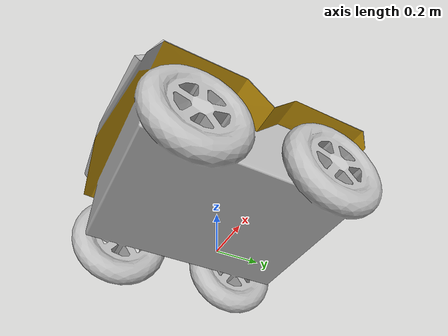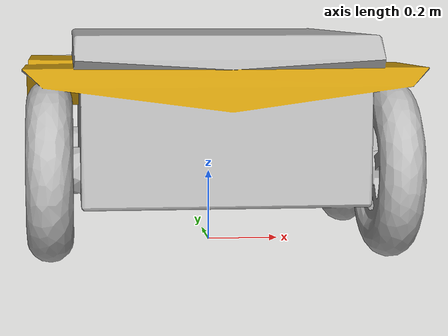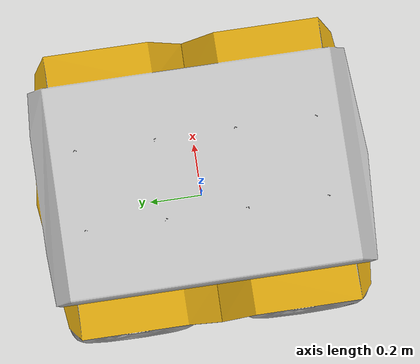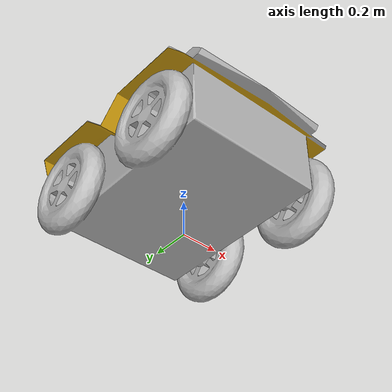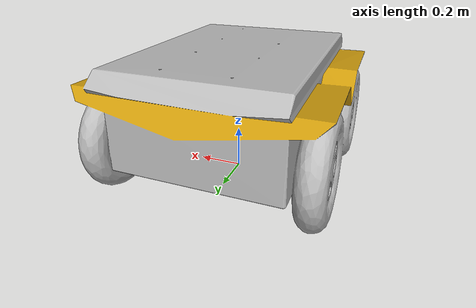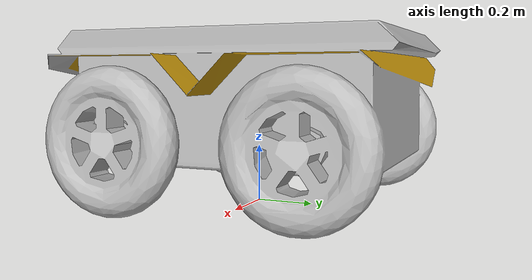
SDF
<?xml version="1.0" ?>
<sdf version="1.5">
  <model name="jackal">
    <static>false</static>
    <link name="link">
      <inertial>
        <pose>0 0 0.0714375 0 0 0</pose>
        <mass>5</mass>
        <!-- approximate as uniform box 0.387 x 0.387 x 0.092 m -->
        <inertia>
          <ixx>0.06814656666666667</ixx>
          <ixy>0.0000</ixy>
          <iyy>0.06814656666666667</iyy>
          <ixz>0.0000</ixz>
          <iyz>0.0000</iyz>
          <izz>0.1248075</izz>
        </inertia>
      </inertial>
      <collision name='collision'>
        <geometry>
          <box>
            <size>.4 .2 .1</size>
          </box>
        </geometry>
      </collision>
      <visual name="visual">
        <geometry>
          <mesh>
            <scale>0.0615 0.0615 0.0615</scale>
            <uri>model://jackal/meshes/jackal_1_lowpoly.dae</uri>
          </mesh>
        </geometry>
      </visual>
    </link>
  </model>
</sdf>
